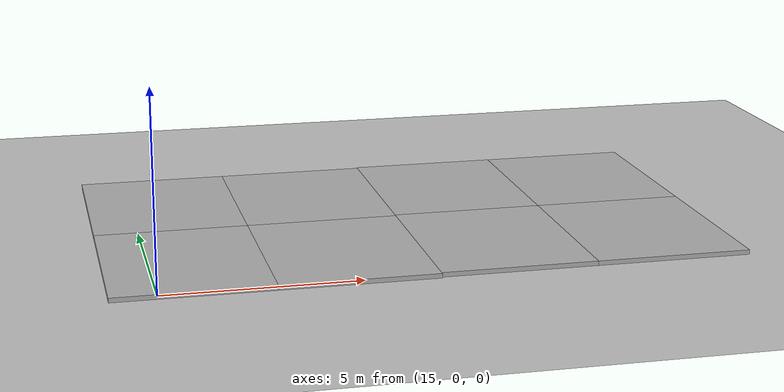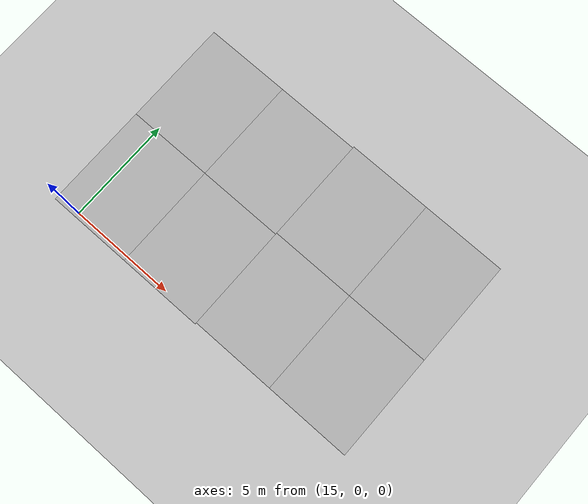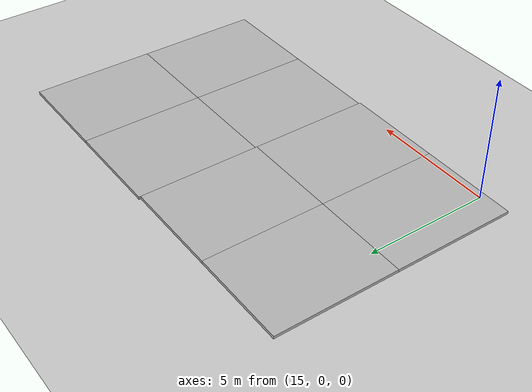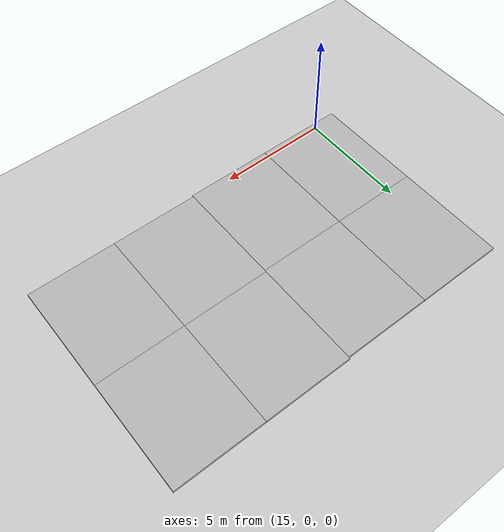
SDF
<sdf version="1.6">
 <world name="default">
  <model name="ground_plane">
   <static>1</static>
   <link name="link">
    <collision name="collision">
     <geometry><plane><normal>0 0 1</normal><size>100 100</size></plane></geometry>
     <surface><friction><ode><mu>100</mu><mu2>50</mu2></ode></friction></surface>
    </collision>
    <visual name="visual">
     <cast_shadows>0</cast_shadows>
     <geometry><plane><normal>0 0 1</normal><size>100 100</size></plane></geometry>
     <material>
      <script><uri>file://media/materials/scripts/gazebo.material</uri><name>Gazebo/Grey</name></script>
     </material>
    </visual>
   </link>
  </model>
  <model name="small_plant_65">
   <pose>17.1757 2.00241 -5884.83 0 -0 0</pose>
   <link name="link_0">
    <pose>17.1757 2.00241 0.110674 0 -0 0</pose>
    <inertial>
     <inertia><ixx>1</ixx><ixy>0</ixy><ixz>0</ixz><iyy>1</iyy><iyz>0</iyz><izz>1</izz></inertia>
     <mass>1</mass>
    </inertial>
   </link>
  </model>
  <model name="small_plant_66">
   <pose>17.3784 2.00196 -5884.83 0 -0 0</pose>
   <link name="link_0">
    <pose>17.3784 2.00196 0.110674 0 -0 0</pose>
    <inertial>
     <inertia><ixx>1</ixx><ixy>0</ixy><ixz>0</ixz><iyy>1</iyy><iyz>0</iyz><izz>1</izz></inertia>
     <mass>1</mass>
    </inertial>
   </link>
  </model>
  <model name="small_plant_67">
   <pose>17.5811 2.00016 -5884.83 0 -0 0</pose>
   <link name="link_0">
    <pose>17.5811 2.00016 0.110674 0 -0 0</pose>
    <inertial>
     <inertia><ixx>1</ixx><ixy>0</ixy><ixz>0</ixz><iyy>1</iyy><iyz>0</iyz><izz>1</izz></inertia>
     <mass>1</mass>
    </inertial>
   </link>
  </model>
  <model name="small_plant_68">
   <pose>17.7838 2.00074 -5884.83 0 -0 0</pose>
   <link name="link_0">
    <pose>17.7838 2.00074 0.110674 0 -0 0</pose>
    <inertial>
     <inertia><ixx>1</ixx><ixy>0</ixy><ixz>0</ixz><iyy>1</iyy><iyz>0</iyz><izz>1</izz></inertia>
     <mass>1</mass>
    </inertial>
   </link>
  </model>
  <model name="small_plant_69">
   <pose>17.9865 2.00158 -5884.83 0 -0 0</pose>
   <link name="link_0">
    <pose>17.9865 2.00158 0.110674 0 -0 0</pose>
    <inertial>
     <inertia><ixx>1</ixx><ixy>0</ixy><ixz>0</ixz><iyy>1</iyy><iyz>0</iyz><izz>1</izz></inertia>
     <mass>1</mass>
    </inertial>
   </link>
  </model>
  <model name="small_plant_70">
   <pose>18.1892 2.00712 -5884.83 0 -0 0</pose>
   <link name="link_0">
    <pose>18.1892 2.00712 0.110674 0 -0 0</pose>
    <inertial>
     <inertia><ixx>1</ixx><ixy>0</ixy><ixz>0</ixz><iyy>1</iyy><iyz>0</iyz><izz>1</izz></inertia>
     <mass>1</mass>
    </inertial>
   </link>
  </model>
  <model name="small_plant_71">
   <pose>18.3919 2.00215 -5884.83 0 -0 0</pose>
   <link name="link_0">
    <pose>18.3919 2.00215 0.110674 0 -0 0</pose>
    <inertial>
     <inertia><ixx>1</ixx><ixy>0</ixy><ixz>0</ixz><iyy>1</iyy><iyz>0</iyz><izz>1</izz></inertia>
     <mass>1</mass>
    </inertial>
   </link>
  </model>
  <model name="small_plant_72">
   <pose>18.5946 2.00764 -5884.83 0 -0 0</pose>
   <link name="link_0">
    <pose>18.5946 2.00764 0.110674 0 -0 0</pose>
    <inertial>
     <inertia><ixx>1</ixx><ixy>0</ixy><ixz>0</ixz><iyy>1</iyy><iyz>0</iyz><izz>1</izz></inertia>
     <mass>1</mass>
    </inertial>
   </link>
  </model>
  <model name="small_plant_73">
   <pose>18.7973 2.00014 -5884.83 0 -0 0</pose>
   <link name="link_0">
    <pose>18.7973 2.00014 0.110674 0 -0 0</pose>
    <inertial>
     <inertia><ixx>1</ixx><ixy>0</ixy><ixz>0</ixz><iyy>1</iyy><iyz>0</iyz><izz>1</izz></inertia>
     <mass>1</mass>
    </inertial>
   </link>
  </model>
  <model name="small_plant_74">
   <pose>19 2.00299 -5884.83 0 -0 0</pose>
   <link name="link_0">
    <pose>19 2.00299 0.110674 0 -0 0</pose>
    <inertial>
     <inertia><ixx>1</ixx><ixy>0</ixy><ixz>0</ixz><iyy>1</iyy><iyz>0</iyz><izz>1</izz></inertia>
     <mass>1</mass>
    </inertial>
   </link>
  </model>
  <model name="small_plant_140">
   <pose>17.1757 2.70422 -5886.19 0 -0 0</pose>
   <link name="link_0">
    <pose>17.1757 2.70422 0.110674 0 -0 0</pose>
    <inertial>
     <inertia><ixx>1</ixx><ixy>0</ixy><ixz>0</ixz><iyy>1</iyy><iyz>0</iyz><izz>1</izz></inertia>
     <mass>1</mass>
    </inertial>
   </link>
  </model>
  <model name="small_plant_141">
   <pose>17.3784 2.70293 -5886.19 0 -0 0</pose>
   <link name="link_0">
    <pose>17.3784 2.70293 0.110674 0 -0 0</pose>
    <inertial>
     <inertia><ixx>1</ixx><ixy>0</ixy><ixz>0</ixz><iyy>1</iyy><iyz>0</iyz><izz>1</izz></inertia>
     <mass>1</mass>
    </inertial>
   </link>
  </model>
  <model name="small_plant_142">
   <pose>17.5811 2.70249 -5886.19 0 -0 0</pose>
   <link name="link_0">
    <pose>17.5811 2.70249 0.110674 0 -0 0</pose>
    <inertial>
     <inertia><ixx>1</ixx><ixy>0</ixy><ixz>0</ixz><iyy>1</iyy><iyz>0</iyz><izz>1</izz></inertia>
     <mass>1</mass>
    </inertial>
   </link>
  </model>
  <model name="small_plant_143">
   <pose>17.7838 2.71327 -5886.19 0 -0 0</pose>
   <link name="link_0">
    <pose>17.7838 2.71327 0.110674 0 -0 0</pose>
    <inertial>
     <inertia><ixx>1</ixx><ixy>0</ixy><ixz>0</ixz><iyy>1</iyy><iyz>0</iyz><izz>1</izz></inertia>
     <mass>1</mass>
    </inertial>
   </link>
  </model>
  <model name="small_plant_144">
   <pose>17.9865 2.70019 -5886.19 0 -0 0</pose>
   <link name="link_0">
    <pose>17.9865 2.70019 0.110674 0 -0 0</pose>
    <inertial>
     <inertia><ixx>1</ixx><ixy>0</ixy><ixz>0</ixz><iyy>1</iyy><iyz>0</iyz><izz>1</izz></inertia>
     <mass>1</mass>
    </inertial>
   </link>
  </model>
  <model name="small_plant_145">
   <pose>18.1892 2.70225 -5886.19 0 -0 0</pose>
   <link name="link_0">
    <pose>18.1892 2.70225 0.110674 0 -0 0</pose>
    <inertial>
     <inertia><ixx>1</ixx><ixy>0</ixy><ixz>0</ixz><iyy>1</iyy><iyz>0</iyz><izz>1</izz></inertia>
     <mass>1</mass>
    </inertial>
   </link>
  </model>
  <model name="small_plant_146">
   <pose>18.3919 2.70056 -5886.19 0 -0 0</pose>
   <link name="link_0">
    <pose>18.3919 2.70056 0.110674 0 -0 0</pose>
    <inertial>
     <inertia><ixx>1</ixx><ixy>0</ixy><ixz>0</ixz><iyy>1</iyy><iyz>0</iyz><izz>1</izz></inertia>
     <mass>1</mass>
    </inertial>
   </link>
  </model>
  <model name="small_plant_147">
   <pose>18.5946 2.70124 -5886.19 0 -0 0</pose>
   <link name="link_0">
    <pose>18.5946 2.70124 0.110674 0 -0 0</pose>
    <inertial>
     <inertia><ixx>1</ixx><ixy>0</ixy><ixz>0</ixz><iyy>1</iyy><iyz>0</iyz><izz>1</izz></inertia>
     <mass>1</mass>
    </inertial>
   </link>
  </model>
  <model name="small_plant_148">
   <pose>18.7973 2.7003 -5886.19 0 -0 0</pose>
   <link name="link_0">
    <pose>18.7973 2.7003 0.110674 0 -0 0</pose>
    <inertial>
     <inertia><ixx>1</ixx><ixy>0</ixy><ixz>0</ixz><iyy>1</iyy><iyz>0</iyz><izz>1</izz></inertia>
     <mass>1</mass>
    </inertial>
   </link>
  </model>
  <model name="small_plant_149">
   <pose>19 2.70187 -5886.19 0 -0 0</pose>
   <link name="link_0">
    <pose>19 2.70187 0.110674 0 -0 0</pose>
    <inertial>
     <inertia><ixx>1</ixx><ixy>0</ixy><ixz>0</ixz><iyy>1</iyy><iyz>0</iyz><izz>1</izz></inertia>
     <mass>1</mass>
    </inertial>
   </link>
  </model>
  <model name="small_plant_215">
   <pose>17.1757 3.40621 -5886.1 0 -0 0</pose>
   <link name="link_0">
    <pose>17.1757 3.40621 0.110674 0 -0 0</pose>
    <inertial>
     <inertia><ixx>1</ixx><ixy>0</ixy><ixz>0</ixz><iyy>1</iyy><iyz>0</iyz><izz>1</izz></inertia>
     <mass>1</mass>
    </inertial>
   </link>
  </model>
  <model name="small_plant_216">
   <pose>17.3784 3.40175 -5886.1 0 -0 0</pose>
   <link name="link_0">
    <pose>17.3784 3.40175 0.110674 0 -0 0</pose>
    <inertial>
     <inertia><ixx>1</ixx><ixy>0</ixy><ixz>0</ixz><iyy>1</iyy><iyz>0</iyz><izz>1</izz></inertia>
     <mass>1</mass>
    </inertial>
   </link>
  </model>
  <model name="small_plant_217">
   <pose>17.5811 3.40177 -5886.1 0 -0 0</pose>
   <link name="link_0">
    <pose>17.5811 3.40177 0.110674 0 -0 0</pose>
    <inertial>
     <inertia><ixx>1</ixx><ixy>0</ixy><ixz>0</ixz><iyy>1</iyy><iyz>0</iyz><izz>1</izz></inertia>
     <mass>1</mass>
    </inertial>
   </link>
  </model>
  <model name="small_plant_218">
   <pose>17.7838 3.40548 -5886.1 0 -0 0</pose>
   <link name="link_0">
    <pose>17.7838 3.40548 0.110674 0 -0 0</pose>
    <inertial>
     <inertia><ixx>1</ixx><ixy>0</ixy><ixz>0</ixz><iyy>1</iyy><iyz>0</iyz><izz>1</izz></inertia>
     <mass>1</mass>
    </inertial>
   </link>
  </model>
  <model name="small_plant_219">
   <pose>17.9865 3.40169 -5886.1 0 -0 0</pose>
   <link name="link_0">
    <pose>17.9865 3.40169 0.110674 0 -0 0</pose>
    <inertial>
     <inertia><ixx>1</ixx><ixy>0</ixy><ixz>0</ixz><iyy>1</iyy><iyz>0</iyz><izz>1</izz></inertia>
     <mass>1</mass>
    </inertial>
   </link>
  </model>
  <model name="small_plant_220">
   <pose>18.1892 3.40396 -5886.1 0 -0 0</pose>
   <link name="link_0">
    <pose>18.1892 3.40396 0.110674 0 -0 0</pose>
    <inertial>
     <inertia><ixx>1</ixx><ixy>0</ixy><ixz>0</ixz><iyy>1</iyy><iyz>0</iyz><izz>1</izz></inertia>
     <mass>1</mass>
    </inertial>
   </link>
  </model>
  <model name="small_plant_221">
   <pose>18.3919 3.40732 -5886.1 0 -0 0</pose>
   <link name="link_0">
    <pose>18.3919 3.40732 0.110674 0 -0 0</pose>
    <inertial>
     <inertia><ixx>1</ixx><ixy>0</ixy><ixz>0</ixz><iyy>1</iyy><iyz>0</iyz><izz>1</izz></inertia>
     <mass>1</mass>
    </inertial>
   </link>
  </model>
  <model name="small_plant_222">
   <pose>18.5946 3.40292 -5886.1 0 -0 0</pose>
   <link name="link_0">
    <pose>18.5946 3.40292 0.110674 0 -0 0</pose>
    <inertial>
     <inertia><ixx>1</ixx><ixy>0</ixy><ixz>0</ixz><iyy>1</iyy><iyz>0</iyz><izz>1</izz></inertia>
     <mass>1</mass>
    </inertial>
   </link>
  </model>
  <model name="small_plant_223">
   <pose>18.7973 3.40023 -5886.1 0 -0 0</pose>
   <link name="link_0">
    <pose>18.7973 3.40023 0.110674 0 -0 0</pose>
    <inertial>
     <inertia><ixx>1</ixx><ixy>0</ixy><ixz>0</ixz><iyy>1</iyy><iyz>0</iyz><izz>1</izz></inertia>
     <mass>1</mass>
    </inertial>
   </link>
  </model>
  <model name="small_plant_224">
   <pose>19 3.4082 -5886.1 0 -0 0</pose>
   <link name="link_0">
    <pose>19 3.4082 0.110674 0 -0 0</pose>
    <inertial>
     <inertia><ixx>1</ixx><ixy>0</ixy><ixz>0</ixz><iyy>1</iyy><iyz>0</iyz><izz>1</izz></inertia>
     <mass>1</mass>
    </inertial>
   </link>
  </model>
  <model name="small_plant_290">
   <pose>17.1757 4.10481 -5885.76 0 -0 0</pose>
   <link name="link_0">
    <pose>17.1757 4.10481 0.110674 0 -0 0</pose>
    <inertial>
     <inertia><ixx>1</ixx><ixy>0</ixy><ixz>0</ixz><iyy>1</iyy><iyz>0</iyz><izz>1</izz></inertia>
     <mass>1</mass>
    </inertial>
   </link>
  </model>
  <model name="small_plant_291">
   <pose>17.3784 4.10528 -5885.76 0 -0 0</pose>
   <link name="link_0">
    <pose>17.3784 4.10528 0.110674 0 -0 0</pose>
    <inertial>
     <inertia><ixx>1</ixx><ixy>0</ixy><ixz>0</ixz><iyy>1</iyy><iyz>0</iyz><izz>1</izz></inertia>
     <mass>1</mass>
    </inertial>
   </link>
  </model>
  <model name="small_plant_292">
   <pose>17.5811 4.10084 -5885.76 0 -0 0</pose>
   <link name="link_0">
    <pose>17.5811 4.10084 0.110674 0 -0 0</pose>
    <inertial>
     <inertia><ixx>1</ixx><ixy>0</ixy><ixz>0</ixz><iyy>1</iyy><iyz>0</iyz><izz>1</izz></inertia>
     <mass>1</mass>
    </inertial>
   </link>
  </model>
  <model name="small_plant_293">
   <pose>17.7838 4.10129 -5885.76 0 -0 0</pose>
   <link name="link_0">
    <pose>17.7838 4.10129 0.110674 0 -0 0</pose>
    <inertial>
     <inertia><ixx>1</ixx><ixy>0</ixy><ixz>0</ixz><iyy>1</iyy><iyz>0</iyz><izz>1</izz></inertia>
     <mass>1</mass>
    </inertial>
   </link>
  </model>
  <model name="small_plant_294">
   <pose>17.9865 4.10223 -5885.76 0 -0 0</pose>
   <link name="link_0">
    <pose>17.9865 4.10223 0.110674 0 -0 0</pose>
    <inertial>
     <inertia><ixx>1</ixx><ixy>0</ixy><ixz>0</ixz><iyy>1</iyy><iyz>0</iyz><izz>1</izz></inertia>
     <mass>1</mass>
    </inertial>
   </link>
  </model>
  <model name="small_plant_295">
   <pose>18.1892 4.10011 -5885.76 0 -0 0</pose>
   <link name="link_0">
    <pose>18.1892 4.10011 0.110674 0 -0 0</pose>
    <inertial>
     <inertia><ixx>1</ixx><ixy>0</ixy><ixz>0</ixz><iyy>1</iyy><iyz>0</iyz><izz>1</izz></inertia>
     <mass>1</mass>
    </inertial>
   </link>
  </model>
  <model name="small_plant_296">
   <pose>18.3919 4.10631 -5885.85 0 -0 0</pose>
   <link name="link_0">
    <pose>18.3919 4.10631 0.110674 0 -0 0</pose>
    <inertial>
     <inertia><ixx>1</ixx><ixy>0</ixy><ixz>0</ixz><iyy>1</iyy><iyz>0</iyz><izz>1</izz></inertia>
     <mass>1</mass>
    </inertial>
   </link>
  </model>
  <model name="small_plant_297">
   <pose>18.5946 4.10639 -5885.85 0 -0 0</pose>
   <link name="link_0">
    <pose>18.5946 4.10639 0.110674 0 -0 0</pose>
    <inertial>
     <inertia><ixx>1</ixx><ixy>0</ixy><ixz>0</ixz><iyy>1</iyy><iyz>0</iyz><izz>1</izz></inertia>
     <mass>1</mass>
    </inertial>
   </link>
  </model>
  <model name="small_plant_298">
   <pose>18.7973 4.1015 -5885.85 0 -0 0</pose>
   <link name="link_0">
    <pose>18.7973 4.1015 0.110674 0 -0 0</pose>
    <inertial>
     <inertia><ixx>1</ixx><ixy>0</ixy><ixz>0</ixz><iyy>1</iyy><iyz>0</iyz><izz>1</izz></inertia>
     <mass>1</mass>
    </inertial>
   </link>
  </model>
  <model name="small_plant_299">
   <pose>19 4.10113 -5885.85 0 -0 0</pose>
   <link name="link_0">
    <pose>19 4.10113 0.110674 0 -0 0</pose>
    <inertial>
     <inertia><ixx>1</ixx><ixy>0</ixy><ixz>0</ixz><iyy>1</iyy><iyz>0</iyz><izz>1</izz></inertia>
     <mass>1</mass>
    </inertial>
   </link>
  </model>
  <model name="small_plant_365">
   <pose>17.1757 4.8102 -5885.51 0 -0 0</pose>
   <link name="link_0">
    <pose>17.1757 4.8102 0.110674 0 -0 0</pose>
    <inertial>
     <inertia><ixx>1</ixx><ixy>0</ixy><ixz>0</ixz><iyy>1</iyy><iyz>0</iyz><izz>1</izz></inertia>
     <mass>1</mass>
    </inertial>
   </link>
  </model>
  <model name="small_plant_366">
   <pose>17.3784 4.80186 -5885.51 0 -0 0</pose>
   <link name="link_0">
    <pose>17.3784 4.80186 0.110674 0 -0 0</pose>
    <inertial>
     <inertia><ixx>1</ixx><ixy>0</ixy><ixz>0</ixz><iyy>1</iyy><iyz>0</iyz><izz>1</izz></inertia>
     <mass>1</mass>
    </inertial>
   </link>
  </model>
  <model name="small_plant_367">
   <pose>17.5811 4.80767 -5885.51 0 -0 0</pose>
   <link name="link_0">
    <pose>17.5811 4.80767 0.110674 0 -0 0</pose>
    <inertial>
     <inertia><ixx>1</ixx><ixy>0</ixy><ixz>0</ixz><iyy>1</iyy><iyz>0</iyz><izz>1</izz></inertia>
     <mass>1</mass>
    </inertial>
   </link>
  </model>
  <model name="small_plant_368">
   <pose>17.7838 4.80339 -5885.51 0 -0 0</pose>
   <link name="link_0">
    <pose>17.7838 4.80339 0.110674 0 -0 0</pose>
    <inertial>
     <inertia><ixx>1</ixx><ixy>0</ixy><ixz>0</ixz><iyy>1</iyy><iyz>0</iyz><izz>1</izz></inertia>
     <mass>1</mass>
    </inertial>
   </link>
  </model>
  <model name="small_plant_369">
   <pose>17.9865 4.8033 -5885.51 0 -0 0</pose>
   <link name="link_0">
    <pose>17.9865 4.8033 0.110674 0 -0 0</pose>
    <inertial>
     <inertia><ixx>1</ixx><ixy>0</ixy><ixz>0</ixz><iyy>1</iyy><iyz>0</iyz><izz>1</izz></inertia>
     <mass>1</mass>
    </inertial>
   </link>
  </model>
  <model name="small_plant_370">
   <pose>18.1892 4.8018 -5885.51 0 -0 0</pose>
   <link name="link_0">
    <pose>18.1892 4.8018 0.110674 0 -0 0</pose>
    <inertial>
     <inertia><ixx>1</ixx><ixy>0</ixy><ixz>0</ixz><iyy>1</iyy><iyz>0</iyz><izz>1</izz></inertia>
     <mass>1</mass>
    </inertial>
   </link>
  </model>
  <model name="small_plant_371">
   <pose>18.3919 4.8016 -5885.51 0 -0 0</pose>
   <link name="link_0">
    <pose>18.3919 4.8016 0.110674 0 -0 0</pose>
    <inertial>
     <inertia><ixx>1</ixx><ixy>0</ixy><ixz>0</ixz><iyy>1</iyy><iyz>0</iyz><izz>1</izz></inertia>
     <mass>1</mass>
    </inertial>
   </link>
  </model>
  <model name="small_plant_372">
   <pose>18.5946 4.80016 -5885.51 0 -0 0</pose>
   <link name="link_0">
    <pose>18.5946 4.80016 0.110674 0 -0 0</pose>
    <inertial>
     <inertia><ixx>1</ixx><ixy>0</ixy><ixz>0</ixz><iyy>1</iyy><iyz>0</iyz><izz>1</izz></inertia>
     <mass>1</mass>
    </inertial>
   </link>
  </model>
  <model name="small_plant_373">
   <pose>18.7973 4.80244 -5885.51 0 -0 0</pose>
   <link name="link_0">
    <pose>18.7973 4.80244 0.110674 0 -0 0</pose>
    <inertial>
     <inertia><ixx>1</ixx><ixy>0</ixy><ixz>0</ixz><iyy>1</iyy><iyz>0</iyz><izz>1</izz></inertia>
     <mass>1</mass>
    </inertial>
   </link>
  </model>
  <model name="small_plant_374">
   <pose>19 4.805 -5885.51 0 -0 0</pose>
   <link name="link_0">
    <pose>19 4.805 0.110674 0 -0 0</pose>
    <inertial>
     <inertia><ixx>1</ixx><ixy>0</ixy><ixz>0</ixz><iyy>1</iyy><iyz>0</iyz><izz>1</izz></inertia>
     <mass>1</mass>
    </inertial>
   </link>
  </model>
  <model name="small_plant_440">
   <pose>17.1757 5.50119 -5885.17 0 -0 0</pose>
   <link name="link_0">
    <pose>17.1757 5.50119 0.110674 0 -0 0</pose>
    <inertial>
     <inertia><ixx>1</ixx><ixy>0</ixy><ixz>0</ixz><iyy>1</iyy><iyz>0</iyz><izz>1</izz></inertia>
     <mass>1</mass>
    </inertial>
   </link>
  </model>
  <model name="small_plant_441">
   <pose>17.3784 5.50001 -5885.17 0 -0 0</pose>
   <link name="link_0">
    <pose>17.3784 5.50001 0.110674 0 -0 0</pose>
    <inertial>
     <inertia><ixx>1</ixx><ixy>0</ixy><ixz>0</ixz><iyy>1</iyy><iyz>0</iyz><izz>1</izz></inertia>
     <mass>1</mass>
    </inertial>
   </link>
  </model>
  <model name="small_plant_442">
   <pose>17.5811 5.50472 -5885.17 0 -0 0</pose>
   <link name="link_0">
    <pose>17.5811 5.50472 0.110674 0 -0 0</pose>
    <inertial>
     <inertia><ixx>1</ixx><ixy>0</ixy><ixz>0</ixz><iyy>1</iyy><iyz>0</iyz><izz>1</izz></inertia>
     <mass>1</mass>
    </inertial>
   </link>
  </model>
  <model name="small_plant_443">
   <pose>17.7838 5.50334 -5885.17 0 -0 0</pose>
   <link name="link_0">
    <pose>17.7838 5.50334 0.110674 0 -0 0</pose>
    <inertial>
     <inertia><ixx>1</ixx><ixy>0</ixy><ixz>0</ixz><iyy>1</iyy><iyz>0</iyz><izz>1</izz></inertia>
     <mass>1</mass>
    </inertial>
   </link>
  </model>
  <model name="small_plant_444">
   <pose>17.9865 5.50091 -5885.17 0 -0 0</pose>
   <link name="link_0">
    <pose>17.9865 5.50091 0.110674 0 -0 0</pose>
    <inertial>
     <inertia><ixx>1</ixx><ixy>0</ixy><ixz>0</ixz><iyy>1</iyy><iyz>0</iyz><izz>1</izz></inertia>
     <mass>1</mass>
    </inertial>
   </link>
  </model>
  <model name="small_plant_445">
   <pose>18.1892 5.50538 -5885.17 0 -0 0</pose>
   <link name="link_0">
    <pose>18.1892 5.50538 0.110674 0 -0 0</pose>
    <inertial>
     <inertia><ixx>1</ixx><ixy>0</ixy><ixz>0</ixz><iyy>1</iyy><iyz>0</iyz><izz>1</izz></inertia>
     <mass>1</mass>
    </inertial>
   </link>
  </model>
  <model name="small_plant_446">
   <pose>18.3919 5.50061 -5885.17 0 -0 0</pose>
   <link name="link_0">
    <pose>18.3919 5.50061 0.110674 0 -0 0</pose>
    <inertial>
     <inertia><ixx>1</ixx><ixy>0</ixy><ixz>0</ixz><iyy>1</iyy><iyz>0</iyz><izz>1</izz></inertia>
     <mass>1</mass>
    </inertial>
   </link>
  </model>
  <model name="small_plant_447">
   <pose>18.5946 5.5066 -5885.17 0 -0 0</pose>
   <link name="link_0">
    <pose>18.5946 5.5066 0.110674 0 -0 0</pose>
    <inertial>
     <inertia><ixx>1</ixx><ixy>0</ixy><ixz>0</ixz><iyy>1</iyy><iyz>0</iyz><izz>1</izz></inertia>
     <mass>1</mass>
    </inertial>
   </link>
  </model>
  <model name="small_plant_448">
   <pose>18.7973 5.50508 -5885.17 0 -0 0</pose>
   <link name="link_0">
    <pose>18.7973 5.50508 0.110674 0 -0 0</pose>
    <inertial>
     <inertia><ixx>1</ixx><ixy>0</ixy><ixz>0</ixz><iyy>1</iyy><iyz>0</iyz><izz>1</izz></inertia>
     <mass>1</mass>
    </inertial>
   </link>
  </model>
  <model name="small_plant_449">
   <pose>19 5.50239 -5885.17 0 -0 0</pose>
   <link name="link_0">
    <pose>19 5.50239 0.110674 0 -0 0</pose>
    <inertial>
     <inertia><ixx>1</ixx><ixy>0</ixy><ixz>0</ixz><iyy>1</iyy><iyz>0</iyz><izz>1</izz></inertia>
     <mass>1</mass>
    </inertial>
   </link>
  </model>
  <model name="small_plant_65">
   <pose>17.1757 2.00241 -5884.83 0 -0 0</pose>
   <link name="link_0">
    <pose>17.1757 2.00241 0.110674 0 -0 0</pose>
    <inertial>
     <inertia><ixx>1</ixx><ixy>0</ixy><ixz>0</ixz><iyy>1</iyy><iyz>0</iyz><izz>1</izz></inertia>
     <mass>1</mass>
    </inertial>
   </link>
  </model>
  <model name="small_plant_66">
   <pose>17.3784 2.00196 -5884.83 0 -0 0</pose>
   <link name="link_0">
    <pose>17.3784 2.00196 0.110674 0 -0 0</pose>
    <inertial>
     <inertia><ixx>1</ixx><ixy>0</ixy><ixz>0</ixz><iyy>1</iyy><iyz>0</iyz><izz>1</izz></inertia>
     <mass>1</mass>
    </inertial>
   </link>
  </model>
  <model name="small_plant_67">
   <pose>17.5811 2.00016 -5884.83 0 -0 0</pose>
   <link name="link_0">
    <pose>17.5811 2.00016 0.110674 0 -0 0</pose>
    <inertial>
     <inertia><ixx>1</ixx><ixy>0</ixy><ixz>0</ixz><iyy>1</iyy><iyz>0</iyz><izz>1</izz></inertia>
     <mass>1</mass>
    </inertial>
   </link>
  </model>
  <model name="small_plant_68">
   <pose>17.7838 2.00074 -5884.83 0 -0 0</pose>
   <link name="link_0">
    <pose>17.7838 2.00074 0.110674 0 -0 0</pose>
    <inertial>
     <inertia><ixx>1</ixx><ixy>0</ixy><ixz>0</ixz><iyy>1</iyy><iyz>0</iyz><izz>1</izz></inertia>
     <mass>1</mass>
    </inertial>
   </link>
  </model>
  <model name="small_plant_69">
   <pose>17.9865 2.00158 -5884.83 0 -0 0</pose>
   <link name="link_0">
    <pose>17.9865 2.00158 0.110674 0 -0 0</pose>
    <inertial>
     <inertia><ixx>1</ixx><ixy>0</ixy><ixz>0</ixz><iyy>1</iyy><iyz>0</iyz><izz>1</izz></inertia>
     <mass>1</mass>
    </inertial>
   </link>
  </model>
  <model name="small_plant_70">
   <pose>18.1892 2.00712 -5884.83 0 -0 0</pose>
   <link name="link_0">
    <pose>18.1892 2.00712 0.110674 0 -0 0</pose>
    <inertial>
     <inertia><ixx>1</ixx><ixy>0</ixy><ixz>0</ixz><iyy>1</iyy><iyz>0</iyz><izz>1</izz></inertia>
     <mass>1</mass>
    </inertial>
   </link>
  </model>
  <model name="small_plant_71">
   <pose>18.3919 2.00215 -5884.83 0 -0 0</pose>
   <link name="link_0">
    <pose>18.3919 2.00215 0.110674 0 -0 0</pose>
    <inertial>
     <inertia><ixx>1</ixx><ixy>0</ixy><ixz>0</ixz><iyy>1</iyy><iyz>0</iyz><izz>1</izz></inertia>
     <mass>1</mass>
    </inertial>
   </link>
  </model>
  <model name="small_plant_72">
   <pose>18.5946 2.00764 -5884.83 0 -0 0</pose>
   <link name="link_0">
    <pose>18.5946 2.00764 0.110674 0 -0 0</pose>
    <inertial>
     <inertia><ixx>1</ixx><ixy>0</ixy><ixz>0</ixz><iyy>1</iyy><iyz>0</iyz><izz>1</izz></inertia>
     <mass>1</mass>
    </inertial>
   </link>
  </model>
  <model name="small_plant_73">
   <pose>18.7973 2.00014 -5884.83 0 -0 0</pose>
   <link name="link_0">
    <pose>18.7973 2.00014 0.110674 0 -0 0</pose>
    <inertial>
     <inertia><ixx>1</ixx><ixy>0</ixy><ixz>0</ixz><iyy>1</iyy><iyz>0</iyz><izz>1</izz></inertia>
     <mass>1</mass>
    </inertial>
   </link>
  </model>
  <model name="small_plant_74">
   <pose>19 2.00299 -5884.83 0 -0 0</pose>
   <link name="link_0">
    <pose>19 2.00299 0.110674 0 -0 0</pose>
    <inertial>
     <inertia><ixx>1</ixx><ixy>0</ixy><ixz>0</ixz><iyy>1</iyy><iyz>0</iyz><izz>1</izz></inertia>
     <mass>1</mass>
    </inertial>
   </link>
  </model>
  <model name="small_plant_140">
   <pose>17.1757 2.70422 -5886.19 0 -0 0</pose>
   <link name="link_0">
    <pose>17.1757 2.70422 0.110674 0 -0 0</pose>
    <inertial>
     <inertia><ixx>1</ixx><ixy>0</ixy><ixz>0</ixz><iyy>1</iyy><iyz>0</iyz><izz>1</izz></inertia>
     <mass>1</mass>
    </inertial>
   </link>
  </model>
  <model name="small_plant_141">
   <pose>17.3784 2.70293 -5886.19 0 -0 0</pose>
   <link name="link_0">
    <pose>17.3784 2.70293 0.110674 0 -0 0</pose>
    <inertial>
     <inertia><ixx>1</ixx><ixy>0</ixy><ixz>0</ixz><iyy>1</iyy><iyz>0</iyz><izz>1</izz></inertia>
     <mass>1</mass>
    </inertial>
   </link>
  </model>
  <model name="small_plant_142">
   <pose>17.5811 2.70249 -5886.19 0 -0 0</pose>
   <link name="link_0">
    <pose>17.5811 2.70249 0.110674 0 -0 0</pose>
    <inertial>
     <inertia><ixx>1</ixx><ixy>0</ixy><ixz>0</ixz><iyy>1</iyy><iyz>0</iyz><izz>1</izz></inertia>
     <mass>1</mass>
    </inertial>
   </link>
  </model>
  <model name="small_plant_143">
   <pose>17.7838 2.71327 -5886.19 0 -0 0</pose>
   <link name="link_0">
    <pose>17.7838 2.71327 0.110674 0 -0 0</pose>
    <inertial>
     <inertia><ixx>1</ixx><ixy>0</ixy><ixz>0</ixz><iyy>1</iyy><iyz>0</iyz><izz>1</izz></inertia>
     <mass>1</mass>
    </inertial>
   </link>
  </model>
  <model name="small_plant_144">
   <pose>17.9865 2.70019 -5886.19 0 -0 0</pose>
   <link name="link_0">
    <pose>17.9865 2.70019 0.110674 0 -0 0</pose>
    <inertial>
     <inertia><ixx>1</ixx><ixy>0</ixy><ixz>0</ixz><iyy>1</iyy><iyz>0</iyz><izz>1</izz></inertia>
     <mass>1</mass>
    </inertial>
   </link>
  </model>
  <model name="small_plant_145">
   <pose>18.1892 2.70225 -5886.19 0 -0 0</pose>
   <link name="link_0">
    <pose>18.1892 2.70225 0.110674 0 -0 0</pose>
    <inertial>
     <inertia><ixx>1</ixx><ixy>0</ixy><ixz>0</ixz><iyy>1</iyy><iyz>0</iyz><izz>1</izz></inertia>
     <mass>1</mass>
    </inertial>
   </link>
  </model>
  <model name="small_plant_146">
   <pose>18.3919 2.70056 -5886.19 0 -0 0</pose>
   <link name="link_0">
    <pose>18.3919 2.70056 0.110674 0 -0 0</pose>
    <inertial>
     <inertia><ixx>1</ixx><ixy>0</ixy><ixz>0</ixz><iyy>1</iyy><iyz>0</iyz><izz>1</izz></inertia>
     <mass>1</mass>
    </inertial>
   </link>
  </model>
  <model name="small_plant_147">
   <pose>18.5946 2.70124 -5886.19 0 -0 0</pose>
   <link name="link_0">
    <pose>18.5946 2.70124 0.110674 0 -0 0</pose>
    <inertial>
     <inertia><ixx>1</ixx><ixy>0</ixy><ixz>0</ixz><iyy>1</iyy><iyz>0</iyz><izz>1</izz></inertia>
     <mass>1</mass>
    </inertial>
   </link>
  </model>
  <model name="small_plant_148">
   <pose>18.7973 2.7003 -5886.19 0 -0 0</pose>
   <link name="link_0">
    <pose>18.7973 2.7003 0.110674 0 -0 0</pose>
    <inertial>
     <inertia><ixx>1</ixx><ixy>0</ixy><ixz>0</ixz><iyy>1</iyy><iyz>0</iyz><izz>1</izz></inertia>
     <mass>1</mass>
    </inertial>
   </link>
  </model>
  <model name="small_plant_149">
   <pose>19 2.70187 -5886.19 0 -0 0</pose>
   <link name="link_0">
    <pose>19 2.70187 0.110674 0 -0 0</pose>
    <inertial>
     <inertia><ixx>1</ixx><ixy>0</ixy><ixz>0</ixz><iyy>1</iyy><iyz>0</iyz><izz>1</izz></inertia>
     <mass>1</mass>
    </inertial>
   </link>
  </model>
  <model name="small_plant_215">
   <pose>17.1757 3.40621 -5886.1 0 -0 0</pose>
   <link name="link_0">
    <pose>17.1757 3.40621 0.110674 0 -0 0</pose>
    <inertial>
     <inertia><ixx>1</ixx><ixy>0</ixy><ixz>0</ixz><iyy>1</iyy><iyz>0</iyz><izz>1</izz></inertia>
     <mass>1</mass>
    </inertial>
   </link>
  </model>
  <model name="small_plant_216">
   <pose>17.3784 3.40175 -5886.1 0 -0 0</pose>
   <link name="link_0">
    <pose>17.3784 3.40175 0.110674 0 -0 0</pose>
    <inertial>
     <inertia><ixx>1</ixx><ixy>0</ixy><ixz>0</ixz><iyy>1</iyy><iyz>0</iyz><izz>1</izz></inertia>
     <mass>1</mass>
    </inertial>
   </link>
  </model>
  <model name="small_plant_217">
   <pose>17.5811 3.40177 -5886.1 0 -0 0</pose>
   <link name="link_0">
    <pose>17.5811 3.40177 0.110674 0 -0 0</pose>
    <inertial>
     <inertia><ixx>1</ixx><ixy>0</ixy><ixz>0</ixz><iyy>1</iyy><iyz>0</iyz><izz>1</izz></inertia>
     <mass>1</mass>
    </inertial>
   </link>
  </model>
  <model name="small_plant_218">
   <pose>17.7838 3.40548 -5886.1 0 -0 0</pose>
   <link name="link_0">
    <pose>17.7838 3.40548 0.110674 0 -0 0</pose>
    <inertial>
     <inertia><ixx>1</ixx><ixy>0</ixy><ixz>0</ixz><iyy>1</iyy><iyz>0</iyz><izz>1</izz></inertia>
     <mass>1</mass>
    </inertial>
   </link>
  </model>
  <model name="small_plant_219">
   <pose>17.9865 3.40169 -5886.1 0 -0 0</pose>
   <link name="link_0">
    <pose>17.9865 3.40169 0.110674 0 -0 0</pose>
    <inertial>
     <inertia><ixx>1</ixx><ixy>0</ixy><ixz>0</ixz><iyy>1</iyy><iyz>0</iyz><izz>1</izz></inertia>
     <mass>1</mass>
    </inertial>
   </link>
  </model>
  <model name="small_plant_220">
   <pose>18.1892 3.40396 -5886.1 0 -0 0</pose>
   <link name="link_0">
    <pose>18.1892 3.40396 0.110674 0 -0 0</pose>
    <inertial>
     <inertia><ixx>1</ixx><ixy>0</ixy><ixz>0</ixz><iyy>1</iyy><iyz>0</iyz><izz>1</izz></inertia>
     <mass>1</mass>
    </inertial>
   </link>
  </model>
  <model name="small_plant_221">
   <pose>18.3919 3.40732 -5886.1 0 -0 0</pose>
   <link name="link_0">
    <pose>18.3919 3.40732 0.110674 0 -0 0</pose>
    <inertial>
     <inertia><ixx>1</ixx><ixy>0</ixy><ixz>0</ixz><iyy>1</iyy><iyz>0</iyz><izz>1</izz></inertia>
     <mass>1</mass>
    </inertial>
   </link>
  </model>
  <model name="small_plant_222">
   <pose>18.5946 3.40292 -5886.1 0 -0 0</pose>
   <link name="link_0">
    <pose>18.5946 3.40292 0.110674 0 -0 0</pose>
    <inertial>
     <inertia><ixx>1</ixx><ixy>0</ixy><ixz>0</ixz><iyy>1</iyy><iyz>0</iyz><izz>1</izz></inertia>
     <mass>1</mass>
    </inertial>
   </link>
  </model>
  <model name="small_plant_223">
   <pose>18.7973 3.40023 -5886.1 0 -0 0</pose>
   <link name="link_0">
    <pose>18.7973 3.40023 0.110674 0 -0 0</pose>
    <inertial>
     <inertia><ixx>1</ixx><ixy>0</ixy><ixz>0</ixz><iyy>1</iyy><iyz>0</iyz><izz>1</izz></inertia>
     <mass>1</mass>
    </inertial>
   </link>
  </model>
  <model name="small_plant_224">
   <pose>19 3.4082 -5886.1 0 -0 0</pose>
   <link name="link_0">
    <pose>19 3.4082 0.110674 0 -0 0</pose>
    <inertial>
     <inertia><ixx>1</ixx><ixy>0</ixy><ixz>0</ixz><iyy>1</iyy><iyz>0</iyz><izz>1</izz></inertia>
     <mass>1</mass>
    </inertial>
   </link>
  </model>
  <model name="small_plant_290">
   <pose>17.1757 4.10481 -5885.76 0 -0 0</pose>
   <link name="link_0">
    <pose>17.1757 4.10481 0.110674 0 -0 0</pose>
    <inertial>
     <inertia><ixx>1</ixx><ixy>0</ixy><ixz>0</ixz><iyy>1</iyy><iyz>0</iyz><izz>1</izz></inertia>
     <mass>1</mass>
    </inertial>
   </link>
  </model>
  <model name="small_plant_291">
   <pose>17.3784 4.10528 -5885.76 0 -0 0</pose>
   <link name="link_0">
    <pose>17.3784 4.10528 0.110674 0 -0 0</pose>
    <inertial>
     <inertia><ixx>1</ixx><ixy>0</ixy><ixz>0</ixz><iyy>1</iyy><iyz>0</iyz><izz>1</izz></inertia>
     <mass>1</mass>
    </inertial>
   </link>
  </model>
  <model name="small_plant_292">
   <pose>17.5811 4.10084 -5885.76 0 -0 0</pose>
   <link name="link_0">
    <pose>17.5811 4.10084 0.110674 0 -0 0</pose>
    <inertial>
     <inertia><ixx>1</ixx><ixy>0</ixy><ixz>0</ixz><iyy>1</iyy><iyz>0</iyz><izz>1</izz></inertia>
     <mass>1</mass>
    </inertial>
   </link>
  </model>
  <model name="small_plant_293">
   <pose>17.7838 4.10129 -5885.76 0 -0 0</pose>
   <link name="link_0">
    <pose>17.7838 4.10129 0.110674 0 -0 0</pose>
    <inertial>
     <inertia><ixx>1</ixx><ixy>0</ixy><ixz>0</ixz><iyy>1</iyy><iyz>0</iyz><izz>1</izz></inertia>
     <mass>1</mass>
    </inertial>
   </link>
  </model>
  <model name="small_plant_294">
   <pose>17.9865 4.10223 -5885.76 0 -0 0</pose>
   <link name="link_0">
    <pose>17.9865 4.10223 0.110674 0 -0 0</pose>
    <inertial>
     <inertia><ixx>1</ixx><ixy>0</ixy><ixz>0</ixz><iyy>1</iyy><iyz>0</iyz><izz>1</izz></inertia>
     <mass>1</mass>
    </inertial>
   </link>
  </model>
  <model name="small_plant_295">
   <pose>18.1892 4.10011 -5885.76 0 -0 0</pose>
   <link name="link_0">
    <pose>18.1892 4.10011 0.110674 0 -0 0</pose>
    <inertial>
     <inertia><ixx>1</ixx><ixy>0</ixy><ixz>0</ixz><iyy>1</iyy><iyz>0</iyz><izz>1</izz></inertia>
     <mass>1</mass>
    </inertial>
   </link>
  </model>
  <model name="small_plant_296">
   <pose>18.3919 4.10631 -5885.85 0 -0 0</pose>
   <link name="link_0">
    <pose>18.3919 4.10631 0.110674 0 -0 0</pose>
    <inertial>
     <inertia><ixx>1</ixx><ixy>0</ixy><ixz>0</ixz><iyy>1</iyy><iyz>0</iyz><izz>1</izz></inertia>
     <mass>1</mass>
    </inertial>
   </link>
  </model>
  <model name="small_plant_297">
   <pose>18.5946 4.10639 -5885.85 0 -0 0</pose>
   <link name="link_0">
    <pose>18.5946 4.10639 0.110674 0 -0 0</pose>
    <inertial>
     <inertia><ixx>1</ixx><ixy>0</ixy><ixz>0</ixz><iyy>1</iyy><iyz>0</iyz><izz>1</izz></inertia>
     <mass>1</mass>
    </inertial>
   </link>
  </model>
  <model name="small_plant_298">
   <pose>18.7973 4.1015 -5885.85 0 -0 0</pose>
   <link name="link_0">
    <pose>18.7973 4.1015 0.110674 0 -0 0</pose>
    <inertial>
     <inertia><ixx>1</ixx><ixy>0</ixy><ixz>0</ixz><iyy>1</iyy><iyz>0</iyz><izz>1</izz></inertia>
     <mass>1</mass>
    </inertial>
   </link>
  </model>
  <model name="small_plant_299">
   <pose>19 4.10113 -5885.85 0 -0 0</pose>
   <link name="link_0">
    <pose>19 4.10113 0.110674 0 -0 0</pose>
    <inertial>
     <inertia><ixx>1</ixx><ixy>0</ixy><ixz>0</ixz><iyy>1</iyy><iyz>0</iyz><izz>1</izz></inertia>
     <mass>1</mass>
    </inertial>
   </link>
  </model>
  <model name="small_plant_364">
   <pose>16.973 4.80645 -5885.51 0 -0 0</pose>
   <link name="link_0">
    <pose>16.973 4.80645 0.110674 0 -0 0</pose>
    <inertial>
     <inertia><ixx>1</ixx><ixy>0</ixy><ixz>0</ixz><iyy>1</iyy><iyz>0</iyz><izz>1</izz></inertia>
     <mass>1</mass>
    </inertial>
   </link>
  </model>
  <model name="small_plant_365">
   <pose>17.1757 4.8102 -5885.51 0 -0 0</pose>
   <link name="link_0">
    <pose>17.1757 4.8102 0.110674 0 -0 0</pose>
    <inertial>
     <inertia><ixx>1</ixx><ixy>0</ixy><ixz>0</ixz><iyy>1</iyy><iyz>0</iyz><izz>1</izz></inertia>
     <mass>1</mass>
    </inertial>
   </link>
  </model>
  <model name="small_plant_366">
   <pose>17.3784 4.80186 -5885.51 0 -0 0</pose>
   <link name="link_0">
    <pose>17.3784 4.80186 0.110674 0 -0 0</pose>
    <inertial>
     <inertia><ixx>1</ixx><ixy>0</ixy><ixz>0</ixz><iyy>1</iyy><iyz>0</iyz><izz>1</izz></inertia>
     <mass>1</mass>
    </inertial>
   </link>
  </model>
  <model name="small_plant_367">
   <pose>17.5811 4.80767 -5885.51 0 -0 0</pose>
   <link name="link_0">
    <pose>17.5811 4.80767 0.110674 0 -0 0</pose>
    <inertial>
     <inertia><ixx>1</ixx><ixy>0</ixy><ixz>0</ixz><iyy>1</iyy><iyz>0</iyz><izz>1</izz></inertia>
     <mass>1</mass>
    </inertial>
   </link>
  </model>
  <model name="small_plant_368">
   <pose>17.7838 4.80339 -5885.51 0 -0 0</pose>
   <link name="link_0">
    <pose>17.7838 4.80339 0.110674 0 -0 0</pose>
    <inertial>
     <inertia><ixx>1</ixx><ixy>0</ixy><ixz>0</ixz><iyy>1</iyy><iyz>0</iyz><izz>1</izz></inertia>
     <mass>1</mass>
    </inertial>
   </link>
  </model>
  <model name="small_plant_369">
   <pose>17.9865 4.8033 -5885.51 0 -0 0</pose>
   <link name="link_0">
    <pose>17.9865 4.8033 0.110674 0 -0 0</pose>
    <inertial>
     <inertia><ixx>1</ixx><ixy>0</ixy><ixz>0</ixz><iyy>1</iyy><iyz>0</iyz><izz>1</izz></inertia>
     <mass>1</mass>
    </inertial>
   </link>
  </model>
  <model name="small_plant_370">
   <pose>18.1892 4.8018 -5885.51 0 -0 0</pose>
   <link name="link_0">
    <pose>18.1892 4.8018 0.110674 0 -0 0</pose>
    <inertial>
     <inertia><ixx>1</ixx><ixy>0</ixy><ixz>0</ixz><iyy>1</iyy><iyz>0</iyz><izz>1</izz></inertia>
     <mass>1</mass>
    </inertial>
   </link>
  </model>
  <model name="small_plant_371">
   <pose>18.3919 4.8016 -5885.51 0 -0 0</pose>
   <link name="link_0">
    <pose>18.3919 4.8016 0.110674 0 -0 0</pose>
    <inertial>
     <inertia><ixx>1</ixx><ixy>0</ixy><ixz>0</ixz><iyy>1</iyy><iyz>0</iyz><izz>1</izz></inertia>
     <mass>1</mass>
    </inertial>
   </link>
  </model>
  <model name="small_plant_372">
   <pose>18.5946 4.80016 -5885.51 0 -0 0</pose>
   <link name="link_0">
    <pose>18.5946 4.80016 0.110674 0 -0 0</pose>
    <inertial>
     <inertia><ixx>1</ixx><ixy>0</ixy><ixz>0</ixz><iyy>1</iyy><iyz>0</iyz><izz>1</izz></inertia>
     <mass>1</mass>
    </inertial>
   </link>
  </model>
  <model name="small_plant_373">
   <pose>18.7973 4.80244 -5885.51 0 -0 0</pose>
   <link name="link_0">
    <pose>18.7973 4.80244 0.110674 0 -0 0</pose>
    <inertial>
     <inertia><ixx>1</ixx><ixy>0</ixy><ixz>0</ixz><iyy>1</iyy><iyz>0</iyz><izz>1</izz></inertia>
     <mass>1</mass>
    </inertial>
   </link>
  </model>
  <model name="small_plant_374">
   <pose>19 4.805 -5885.51 0 -0 0</pose>
   <link name="link_0">
    <pose>19 4.805 0.110674 0 -0 0</pose>
    <inertial>
     <inertia><ixx>1</ixx><ixy>0</ixy><ixz>0</ixz><iyy>1</iyy><iyz>0</iyz><izz>1</izz></inertia>
     <mass>1</mass>
    </inertial>
   </link>
  </model>
  <model name="small_plant_439">
   <pose>16.973 5.50484 -5885.17 0 -0 0</pose>
   <link name="link_0">
    <pose>16.973 5.50484 0.110674 0 -0 0</pose>
    <inertial>
     <inertia><ixx>1</ixx><ixy>0</ixy><ixz>0</ixz><iyy>1</iyy><iyz>0</iyz><izz>1</izz></inertia>
     <mass>1</mass>
    </inertial>
   </link>
  </model>
  <model name="small_plant_440">
   <pose>17.1757 5.50119 -5885.17 0 -0 0</pose>
   <link name="link_0">
    <pose>17.1757 5.50119 0.110674 0 -0 0</pose>
    <inertial>
     <inertia><ixx>1</ixx><ixy>0</ixy><ixz>0</ixz><iyy>1</iyy><iyz>0</iyz><izz>1</izz></inertia>
     <mass>1</mass>
    </inertial>
   </link>
  </model>
  <model name="small_plant_441">
   <pose>17.3784 5.50001 -5885.17 0 -0 0</pose>
   <link name="link_0">
    <pose>17.3784 5.50001 0.110674 0 -0 0</pose>
    <inertial>
     <inertia><ixx>1</ixx><ixy>0</ixy><ixz>0</ixz><iyy>1</iyy><iyz>0</iyz><izz>1</izz></inertia>
     <mass>1</mass>
    </inertial>
   </link>
  </model>
  <model name="small_plant_442">
   <pose>17.5811 5.50472 -5885.17 0 -0 0</pose>
   <link name="link_0">
    <pose>17.5811 5.50472 0.110674 0 -0 0</pose>
    <inertial>
     <inertia><ixx>1</ixx><ixy>0</ixy><ixz>0</ixz><iyy>1</iyy><iyz>0</iyz><izz>1</izz></inertia>
     <mass>1</mass>
    </inertial>
   </link>
  </model>
  <model name="small_plant_443">
   <pose>17.7838 5.50334 -5885.17 0 -0 0</pose>
   <link name="link_0">
    <pose>17.7838 5.50334 0.110674 0 -0 0</pose>
    <inertial>
     <inertia><ixx>1</ixx><ixy>0</ixy><ixz>0</ixz><iyy>1</iyy><iyz>0</iyz><izz>1</izz></inertia>
     <mass>1</mass>
    </inertial>
   </link>
  </model>
  <model name="small_plant_444">
   <pose>17.9865 5.50091 -5885.17 0 -0 0</pose>
   <link name="link_0">
    <pose>17.9865 5.50091 0.110674 0 -0 0</pose>
    <inertial>
     <inertia><ixx>1</ixx><ixy>0</ixy><ixz>0</ixz><iyy>1</iyy><iyz>0</iyz><izz>1</izz></inertia>
     <mass>1</mass>
    </inertial>
   </link>
  </model>
  <model name="small_plant_445">
   <pose>18.1892 5.50538 -5885.17 0 -0 0</pose>
   <link name="link_0">
    <pose>18.1892 5.50538 0.110674 0 -0 0</pose>
    <inertial>
     <inertia><ixx>1</ixx><ixy>0</ixy><ixz>0</ixz><iyy>1</iyy><iyz>0</iyz><izz>1</izz></inertia>
     <mass>1</mass>
    </inertial>
   </link>
  </model>
  <model name="small_plant_446">
   <pose>18.3919 5.50061 -5885.17 0 -0 0</pose>
   <link name="link_0">
    <pose>18.3919 5.50061 0.110674 0 -0 0</pose>
    <inertial>
     <inertia><ixx>1</ixx><ixy>0</ixy><ixz>0</ixz><iyy>1</iyy><iyz>0</iyz><izz>1</izz></inertia>
     <mass>1</mass>
    </inertial>
   </link>
  </model>
  <model name="small_plant_447">
   <pose>18.5946 5.5066 -5885.17 0 -0 0</pose>
   <link name="link_0">
    <pose>18.5946 5.5066 0.110674 0 -0 0</pose>
    <inertial>
     <inertia><ixx>1</ixx><ixy>0</ixy><ixz>0</ixz><iyy>1</iyy><iyz>0</iyz><izz>1</izz></inertia>
     <mass>1</mass>
    </inertial>
   </link>
  </model>
  <model name="small_plant_448">
   <pose>18.7973 5.50508 -5885.17 0 -0 0</pose>
   <link name="link_0">
    <pose>18.7973 5.50508 0.110674 0 -0 0</pose>
    <inertial>
     <inertia><ixx>1</ixx><ixy>0</ixy><ixz>0</ixz><iyy>1</iyy><iyz>0</iyz><izz>1</izz></inertia>
     <mass>1</mass>
    </inertial>
   </link>
  </model>
  <model name="small_plant_449">
   <pose>19 5.50239 -5885.17 0 -0 0</pose>
   <link name="link_0">
    <pose>19 5.50239 0.110674 0 -0 0</pose>
    <inertial>
     <inertia><ixx>1</ixx><ixy>0</ixy><ixz>0</ixz><iyy>1</iyy><iyz>0</iyz><izz>1</izz></inertia>
     <mass>1</mass>
    </inertial>
   </link>
  </model>
  <model name="mud_box_0_clone_clone_0">
   <static>1</static>
   <link name="link">
    <collision name="collision"><geometry><box><size>8 10 0.2</size></box></geometry></collision>
    <visual name="visual_1">
     <pose>-2 2.5 0 0 -0 0</pose>
     <cast_shadows>0</cast_shadows>
     <geometry><box><size>4 5 0.2</size></box></geometry>
     <material>
      <script>
       <uri>model://mud_box/materials/scripts</uri>
       <uri>model://mud_box/materials/textures</uri>
       <name>vrc/mud</name>
      </script>
     </material>
    </visual>
    <visual name="visual_2">
     <pose>2 2.5 0 0 -0 0</pose>
     <cast_shadows>0</cast_shadows>
     <geometry><box><size>4 5 0.2</size></box></geometry>
     <material>
      <script>
       <uri>model://mud_box/materials/scripts</uri>
       <uri>model://mud_box/materials/textures</uri>
       <name>vrc/mud</name>
      </script>
     </material>
    </visual>
    <visual name="visual_3">
     <pose>2 -2.5 0 0 -0 0</pose>
     <cast_shadows>0</cast_shadows>
     <geometry><box><size>4 5 0.2</size></box></geometry>
     <material>
      <script>
       <uri>model://mud_box/materials/scripts</uri>
       <uri>model://mud_box/materials/textures</uri>
       <name>vrc/mud</name>
      </script>
     </material>
    </visual>
    <visual name="visual_4">
     <pose>-2 -2.5 0 0 -0 0</pose>
     <cast_shadows>0</cast_shadows>
     <geometry><box><size>4 5 0.2</size></box></geometry>
     <material>
      <script>
       <uri>model://mud_box/materials/scripts</uri>
       <uri>model://mud_box/materials/textures</uri>
       <name>vrc/mud</name>
      </script>
     </material>
    </visual>
   </link>
   <pose>17.8432 4.79546 0 0 -0 0</pose>
  </model>
  <model name="mud_box_0_clone_clone_2">
   <static>1</static>
   <link name="link">
    <collision name="collision"><geometry><box><size>8 10 0.2</size></box></geometry></collision>
    <visual name="visual_1">
     <pose>-2 2.5 0 0 -0 0</pose>
     <cast_shadows>0</cast_shadows>
     <geometry><box><size>4 5 0.2</size></box></geometry>
     <material>
      <script>
       <uri>model://mud_box/materials/scripts</uri>
       <uri>model://mud_box/materials/textures</uri>
       <name>vrc/mud</name>
      </script>
     </material>
    </visual>
    <visual name="visual_2">
     <pose>2 2.5 0 0 -0 0</pose>
     <cast_shadows>0</cast_shadows>
     <geometry><box><size>4 5 0.2</size></box></geometry>
     <material>
      <script>
       <uri>model://mud_box/materials/scripts</uri>
       <uri>model://mud_box/materials/textures</uri>
       <name>vrc/mud</name>
      </script>
     </material>
    </visual>
    <visual name="visual_3">
     <pose>2 -2.5 0 0 -0 0</pose>
     <cast_shadows>0</cast_shadows>
     <geometry><box><size>4 5 0.2</size></box></geometry>
     <material>
      <script>
       <uri>model://mud_box/materials/scripts</uri>
       <uri>model://mud_box/materials/textures</uri>
       <name>vrc/mud</name>
      </script>
     </material>
    </visual>
    <visual name="visual_4">
     <pose>-2 -2.5 0 0 -0 0</pose>
     <cast_shadows>0</cast_shadows>
     <geometry><box><size>4 5 0.2</size></box></geometry>
     <material>
      <script>
       <uri>model://mud_box/materials/scripts</uri>
       <uri>model://mud_box/materials/textures</uri>
       <name>vrc/mud</name>
      </script>
     </material>
    </visual>
   </link>
   <pose>25.8431 4.86366 0 0 -0 0</pose>
  </model>
 </world>
</sdf>
